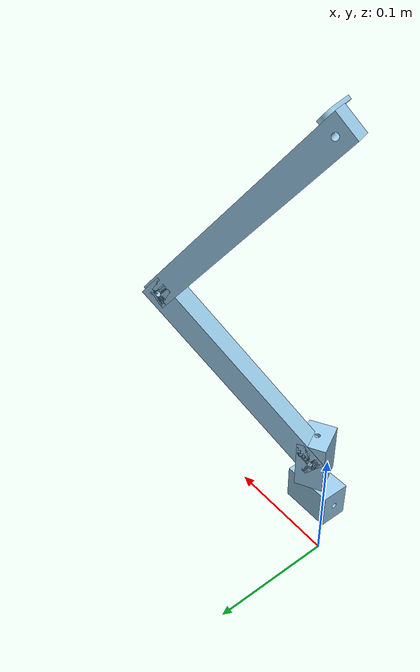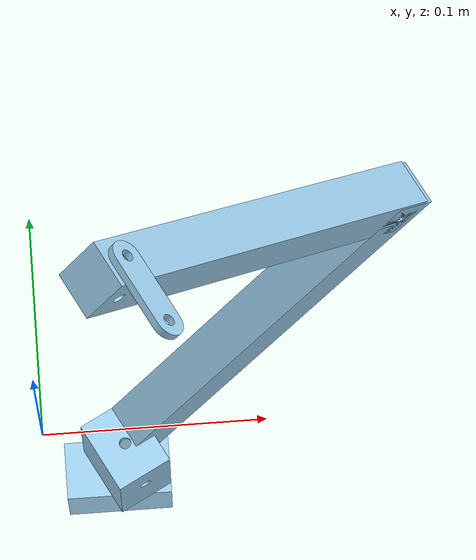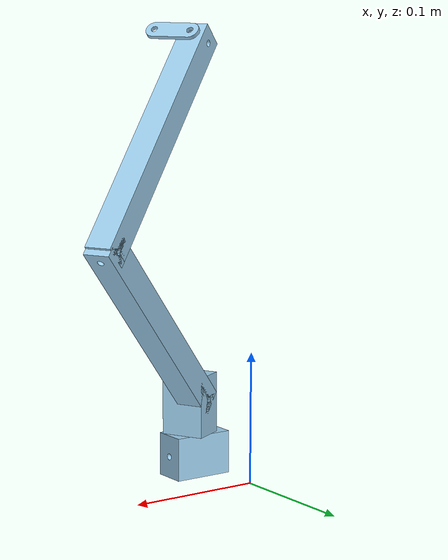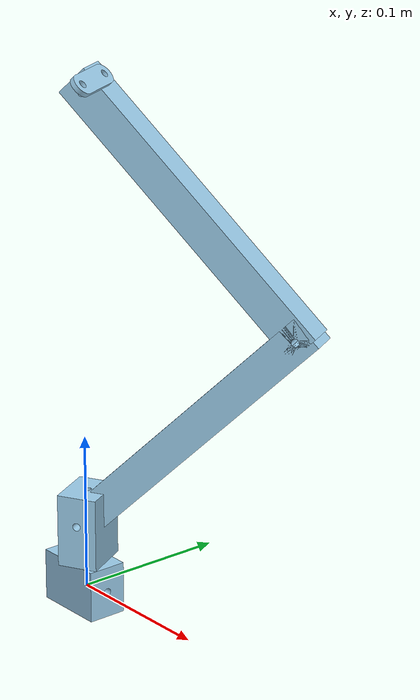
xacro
<?xml version="1.0"?>
<robot xmlns:xacro="http://www.ros.org/wiki/xacro" name="onshape">
    <xacro:arg name="initial_positions_file" default="initial_positions.yaml" />

    <!-- Import onshape urdf file -->
    <xacro:include filename="$(find abhinav_arm)/description/urdf/mourya.urdf" />

    <!-- Import control_xacro -->
    <xacro:include filename="onshape.ros2_control.xacro" />

    <xacro:onshape_ros2_control name="FakeSystem" initial_positions_file="$(arg initial_positions_file)"/>

</robot>

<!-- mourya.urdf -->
<robot name="onshape" xmlns:xacro="http://ros.org/wiki/xacro">

<link name="world"/>

<!-- Add a fixed joint between world and servo -->
<joint name="world_joint" type="fixed">
    <parent link="world"/>
    <child link="servo"/>
    <origin xyz="0.0 0.0 0.0" rpy="0.0 0.0 0.0"/>
</joint>

 <link name="servo">
    <visual>
        <origin xyz="0.032718666788579785221 -0.026375442291109735954 0.0073018751187259589575" rpy="0.0 -0.0 0.0" />
        <geometry>
        <mesh filename="package://sapien_arm/description/meshes/visual/servo.dae"/>
        </geometry>
        <material name="">
        <color rgba="0.61568627450980395466 0.81176470588235294379 0.92941176470588238168 1.0"/>
        </material>
    </visual>
    <collision>
        <origin xyz="0.032718666788579785221 -0.026375442291109735954 0.0073018751187259589575" rpy="0.0 -0.0 0.0" />
        <geometry>
        <mesh filename="package://sapien_arm/description/meshes/collision/servo.stl"/>
        </geometry>
    </collision>
        <inertial>
        <origin xyz="0.032652007527250198615 -0.026375441741982637994 0.023301874940578035794" rpy="0.0 0.0 0.0"/>
        <mass value="0.093399232466800610752" />
        <inertia ixx="1.3101911709957606207e-05" ixy="-1.9163164104932232372e-13"  ixz="1.9890621813240049023e-13" iyy="2.4292764890865188316e-05" iyz="4.936677392002600175e-13" izz="2.1087845681977408194e-05" />
        </inertial>
 </link>

<link name="servo_2">
<visual>
<origin xyz="0.0 0.016000000000000000333 -0.022610000000000005094" rpy="1.570796326794896558 1.570796326794896558 0.0" />
<geometry>
<mesh filename="package://sapien_arm/description/meshes/visual/servo.dae"/>
</geometry>
<material name="">
<color rgba="0.61568627450980395466 0.81176470588235294379 0.92941176470588238168 1.0"/>
</material>
</visual>
<collision>
<origin xyz="0.0 0.016000000000000000333 -0.022610000000000005094" rpy="1.570796326794896558 1.570796326794896558 0.0" />
<geometry>
<mesh filename="package://sapien_arm/description/meshes/collision/servo.stl"/>
</geometry>
</collision>
<inertial>
<origin xyz="5.4912709887992926091e-10 1.7814792349635233393e-10 -0.022543340738670421958" rpy="0.0 0.0 0.0"/>
<mass value="0.093399232466800610752" />
<inertia ixx="2.4292764890865188316e-05" ixy="-4.936677377929595266e-13"  ixz="1.9163164104932232372e-13" iyy="2.1087845681977408194e-05" iyz="1.9890621813240049023e-13" izz="1.3101911709957606207e-05" />
</inertial>
</link>

<link name="tube">
<visual>
<origin xyz="-1.3877787807814456755e-17 0.0 -0.009859364479780200613" rpy="1.570796326794896558 1.570796326794896558 0.0" />
<geometry>
<mesh filename="package://sapien_arm/description/meshes/visual/tube.dae"/>
</geometry>
<material name="">
<color rgba="0.61568627450980395466 0.81176470588235294379 0.92941176470588238168 1.0"/>
</material>
</visual>
<collision>
<origin xyz="-1.3877787807814456755e-17 0.0 -0.009859364479780200613" rpy="1.570796326794896558 1.570796326794896558 0.0" />
<geometry>
<mesh filename="package://sapien_arm/description/meshes/collision/tube.stl"/>
</geometry>
</collision>
<inertial>
<origin xyz="-0.093644322751974831687 -7.9196223765219620537e-11 -0.0098593640573185412079" rpy="0.0 0.0 0.0"/>
<mass value="0.22962996415282821427" />
<inertia ixx="1.6542633726599465085e-05" ixy="-7.1610702985942383269e-13"  ixz="7.703350553304966414e-12" iyy="0.0007572461571922548115" iyz="6.8500618598074219517e-13" izz="0.00075885016345083569807" />
</inertial>
</link>

<link name="tube_2">
<visual>
<origin xyz="1.3877787807814456755e-17 0.0 -0.0098593644797801971436" rpy="1.570796326794896558 1.570796326794896558 0.0" />
<geometry>
<mesh filename="package://sapien_arm/description/meshes/visual/tube.dae"/>
</geometry>
<material name="">
<color rgba="0.61568627450980395466 0.81176470588235294379 0.92941176470588238168 1.0"/>
</material>
</visual>
<collision>
<origin xyz="1.3877787807814456755e-17 0.0 -0.0098593644797801971436" rpy="1.570796326794896558 1.570796326794896558 0.0" />
<geometry>
<mesh filename="package://sapien_arm/description/meshes/collision/tube.stl"/>
</geometry>
</collision>
<inertial>
<origin xyz="-0.093644322751974803931 -7.919622399204080338e-11 -0.0098593640573185429427" rpy="0.0 0.0 0.0"/>
<mass value="0.22962996415282821427" />
<inertia ixx="1.6542633726599465085e-05" ixy="-7.1610701043807385852e-13"  ixz="7.7033504849440625621e-12" iyy="0.00075724615719225546202" iyz="6.8500620343386295575e-13" izz="0.00075885016345083569807" />
</inertial>
</link>

<link name="link">
<visual>
<origin xyz="-0.028761368444492452223 -6.9388939039072283776e-18 -0.0029999999999999471534" rpy="1.1900733130542982356e-17 -1.2211314860100070848e-17 -7.8217795855221370653e-17" />
<geometry>
<mesh filename="package://sapien_arm/description/meshes/visual/link.dae"/>
</geometry>
<material name="">
<color rgba="0.61568627450980395466 0.81176470588235294379 0.92941176470588238168 1.0"/>
</material>
</visual>
<collision>
<origin xyz="-0.028761368444492452223 -6.9388939039072283776e-18 -0.0029999999999999471534" rpy="1.1900733130542982356e-17 -1.2211314860100070848e-17 -7.8217795855221370653e-17" />
<geometry>
<mesh filename="package://sapien_arm/description/meshes/collision/link.stl"/>
</geometry>
</collision>
<inertial>
<origin xyz="-0.014380684222246226112 -7.9924495699086997676e-18 -0.0014999999999999471222" rpy="0.0 0.0 0.0"/>
<mass value="0.0039283402337506444918" />
<inertia ixx="6.0771649686119339228e-08" ixy="-3.0266158769480650219e-23"  ixz="6.1951517681224883094e-24" iyy="4.8917487284790213221e-07" iyz="3.1671271021650150186e-23" izz="5.4405401218339539119e-07" />
</inertial>
</link>

<joint name="gripper" type="revolute">
<origin xyz="-0.18503519892692563142 -0.010844984091818332672 -0.0098593644797802040824" rpy="-1.570796326794896558 2.044537757461839541e-15 6.0078544294123473608e-14" />
<parent link="tube_2" />
<child link="link" />
<axis xyz="0.0 0.0 1.0"/>
<limit effort="1.0" velocity="20.0" lower="3.141592653589793116" upper="6.283185307179586232"/>
<joint_properties friction="0.0"/>
</joint>

<joint name="elbow" type="revolute">
<origin xyz="-0.18500000000000002554 3.4694469519536141888e-17 3.4694469519536141888e-18" rpy="-1.3908269104259140544e-14 -1.749432667894997864e-15 -1.5707946197513502629" />
<parent link="tube" />
<child link="tube_2" />
<axis xyz="0.0 0.0 1.0"/>
<limit effort="1" velocity="20.0" lower="0.0" upper="3.141592653589793116"/>
<joint_properties friction="0.0"/>
</joint>

<joint name="shoulder" type="revolute">
<origin xyz="0.0 -0.016000000000000000333 -0.026810000000000000497" rpy="-1.570796326794896558 -0.77832067475547572766 -3.141592653589793116" />
<parent link="servo_2" />
<child link="tube" />
<axis xyz="0.0 0.0 1.0"/>
<limit effort="1" velocity="20.0" lower="0.0" upper="3.141592653589793116"/>
<joint_properties friction="0.0"/>
</joint>

<joint name="base" type="revolute">
<origin xyz="0.036918666788579787563 -0.026375442291109732484 0.039301875118725959624" rpy="3.1415926535897926719 5.3028613598959552621e-16 0.48583811193006148921" />
<parent link="servo" />
<child link="servo_2" />
<axis xyz="0.0 0.0 1.0"/>
<limit effort="1" velocity="20.0" lower="0.0" upper="6.283185307179586232"/>
<joint_properties friction="0.0"/>
</joint>

</robot>
